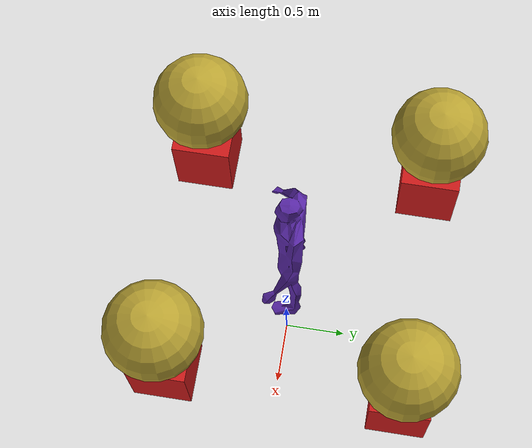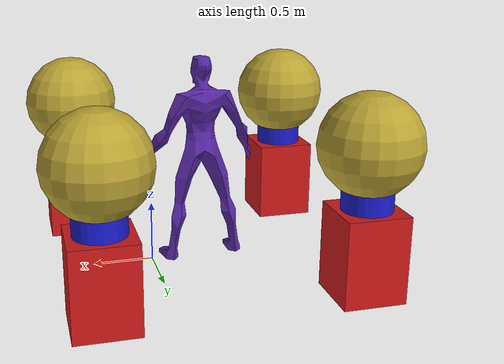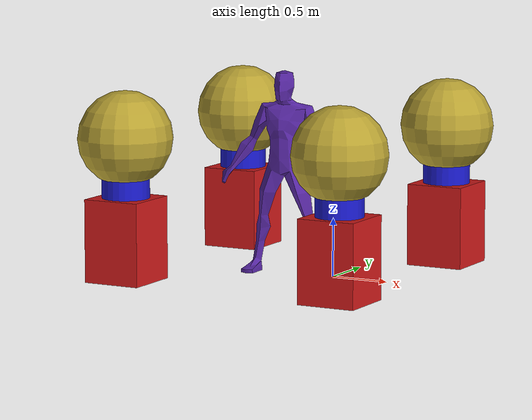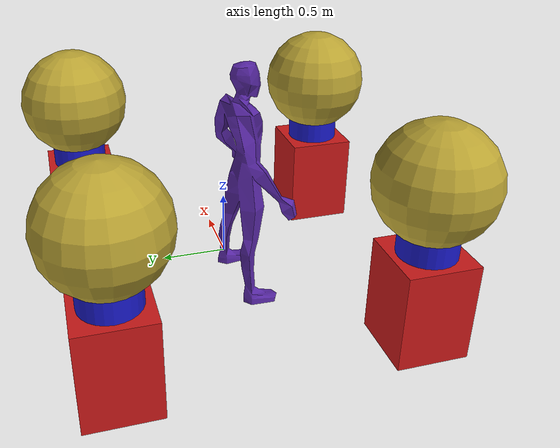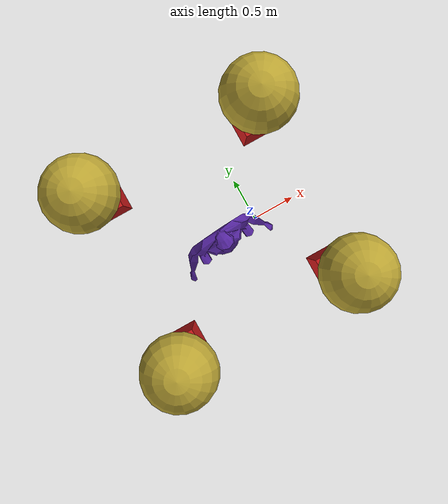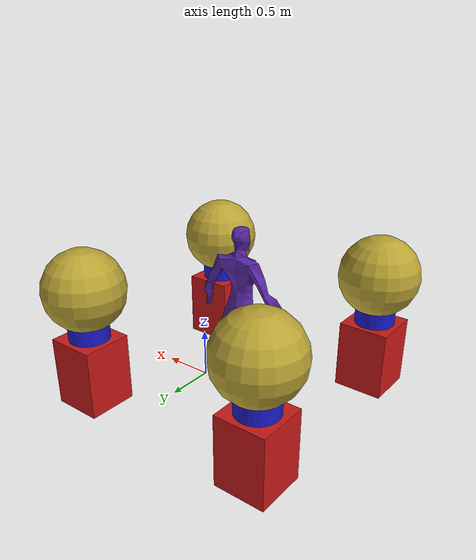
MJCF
<mujoco>
    <asset>
        <mesh name="man" file="meshes/windflow/man.stl" scale="0.3 0.3 0.3"/>
    </asset>

    <worldbody>
        <geom type="mesh" mesh="man" rgba="0.34 0.15 0.64 1" euler="0 0 4.7123" pos="-0.45 0.05 0.01"/>

        <body name="col1" pos="0.55 1.05 0">
            <geom type="box" size="0.25 0.25 0.35" rgba="0.8 0.1 0.1 1" pos="0 0 0.35"/>
            <geom type="cylinder" size="0.2 0.35" rgba="0.1 0.1 0.8 1" pos="0 0 0.75"/>
            <geom type="sphere" size="0.4" rgba="0.73 0.64 0.2 1" pos="0 0 1.2"/>
        </body>

        <body name="col2" pos="-1.45 1.05 0">
            <geom type="box" size="0.25 0.25 0.35" rgba="0.8 0.1 0.1 1" pos="0 0 0.35"/>
            <geom type="cylinder" size="0.2 0.35" rgba="0.1 0.1 0.8 1" pos="0 0 0.75"/>
            <geom type="sphere" size="0.4" rgba="0.73 0.64 0.2 1" pos="0 0 1.2"/>
        </body>

        <body name="col3" pos="0.55 -0.95 0">
            <geom type="box" size="0.25 0.25 0.35" rgba="0.8 0.1 0.1 1" pos="0 0 0.35"/>
            <geom type="cylinder" size="0.2 0.35" rgba="0.1 0.1 0.8 1" pos="0 0 0.75"/>
            <geom type="sphere" size="0.4" rgba="0.73 0.64 0.2 1" pos="0 0 1.2"/>
        </body>

        <body name="col4" pos="-1.45 -0.95 0">
            <geom type="box" size="0.25 0.25 0.35" rgba="0.8 0.1 0.1 1" pos="0 0 0.35"/>
            <geom type="cylinder" size="0.2 0.35" rgba="0.1 0.1 0.8 1" pos="0 0 0.75"/>
            <geom type="sphere" size="0.4" rgba="0.73 0.64 0.2 1" pos="0 0 1.2"/>
        </body>

    </worldbody>
</mujoco>
